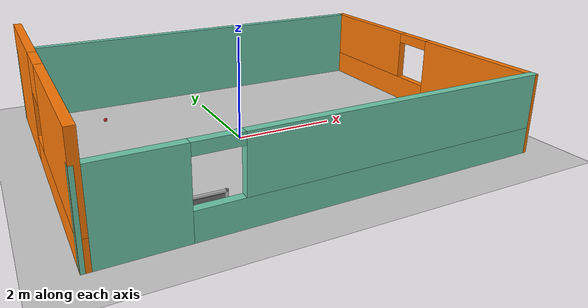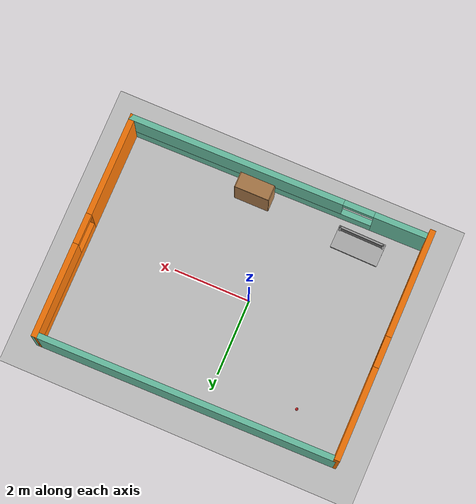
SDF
<sdf version="1.6">
 <world name="default">
  <light name="sun" type="directional">
   <pose>0 0 10 0 -0 0</pose>
   <diffuse>0.8 0.8 0.8 1</diffuse>
   <specular>0.2 0.2 0.2 1</specular>
   <attenuation>
    <range>1000</range>
    <constant>0.9</constant>
    <linear>0.01</linear>
    <quadratic>0.001</quadratic>
   </attenuation>
   <direction>-0.5 0.1 -0.9</direction>
  </light>
  <model name="ground_plane">
   <static>1</static>
   <link name="link">
    <collision name="collision">
     <geometry><plane><normal>0 0 1</normal><size>100 100</size></plane></geometry>
     <surface>
      <contact><collide_bitmask>65535</collide_bitmask></contact>
      <friction><ode><mu>100</mu><mu2>50</mu2></ode></friction>
     </surface>
    </collision>
    <visual name="visual">
     <cast_shadows>0</cast_shadows>
     <geometry><plane><normal>0 0 1</normal><size>100 100</size></plane></geometry>
     <material>
      <script><uri>file://media/materials/scripts/gazebo.material</uri><name>Gazebo/Grey</name></script>
     </material>
    </visual>
   </link>
  </model>
  <gravity>0 0 -9.8</gravity>
  <magnetic_field>6e-06 2.3e-05 -4.2e-05</magnetic_field>
  <atmosphere type="adiabatic"/>
  <physics name="default_physics" default="0" type="ode">
   <max_step_size>0.001</max_step_size>
   <real_time_factor>1</real_time_factor>
   <real_time_update_rate>1000</real_time_update_rate>
  </physics>
  <scene><ambient>0.4 0.4 0.4 1</ambient><background>0.7 0.7 0.7 1</background><shadows>1</shadows></scene>
  <spherical_coordinates>
   <surface_model>EARTH_WGS84</surface_model>
   <latitude_deg>0</latitude_deg>
   <longitude_deg>0</longitude_deg>
   <elevation>0</elevation>
   <heading_deg>0</heading_deg>
  </spherical_coordinates>
  <model name="my_wall">
   <pose>0.408424 0.027831 0 0 -0 0</pose>
   <link name="Wall_0">
    <collision name="Wall_0_Collision">
     <geometry><box><size>8 0.15 1.5</size></box></geometry>
     <pose>0 0 0.75 0 -0 0</pose>
    </collision>
    <visual name="Wall_0_Visual">
     <pose>0 0 0.75 0 -0 0</pose>
     <geometry><box><size>8 0.15 1.5</size></box></geometry>
     <material>
      <script><uri>file://media/materials/scripts/gazebo.material</uri><name>Gazebo/Grey</name></script>
      <ambient>0.435294 0.796078 0.67451 1</ambient>
     </material>
     <meta><layer>0</layer></meta>
    </visual>
    <pose>0 2.93658 0 0 -0 0.008791</pose>
   </link>
   <link name="Wall_2">
    <pose>-3.9245 -0.034424 0 0 0 -1.5708</pose>
    <visual name="Wall_2_Visual_0">
     <pose>-1.80969 0 1 0 -0 0</pose>
     <geometry><box><size>2.40375 0.15 2</size></box></geometry>
     <material>
      <script><uri>file://media/materials/scripts/gazebo.material</uri><name>Gazebo/Grey</name></script>
      <ambient>0.996078 0.47451 0.0196078 1</ambient>
     </material>
     <meta><layer>0</layer></meta>
    </visual>
    <collision name="Wall_2_Collision_0">
     <geometry><box><size>2.40375 0.15 2</size></box></geometry>
     <pose>-1.80969 0 1 0 -0 0</pose>
    </collision>
    <visual name="Wall_2_Visual_1">
     <pose>1.20188 0 0.25 0 -0 0</pose>
     <geometry><box><size>3.61938 0.15 0.5</size></box></geometry>
     <material>
      <script><uri>file://media/materials/scripts/gazebo.material</uri><name>Gazebo/Grey</name></script>
      <ambient>0.996078 0.47451 0.0196078 1</ambient>
     </material>
     <meta><layer>0</layer></meta>
    </visual>
    <collision name="Wall_2_Collision_1">
     <geometry><box><size>3.61938 0.15 0.5</size></box></geometry>
     <pose>1.20188 0 0.25 0 -0 0</pose>
    </collision>
    <visual name="Wall_2_Visual_2">
     <pose>1.60188 0 1.25 0 -0 0</pose>
     <geometry><box><size>2.81938 0.15 1.5</size></box></geometry>
     <material>
      <script><uri>file://media/materials/scripts/gazebo.material</uri><name>Gazebo/Grey</name></script>
      <ambient>0.996078 0.47451 0.0196078 1</ambient>
     </material>
     <meta><layer>0</layer></meta>
    </visual>
    <collision name="Wall_2_Collision_2">
     <geometry><box><size>2.81938 0.15 1.5</size></box></geometry>
     <pose>1.60188 0 1.25 0 -0 0</pose>
    </collision>
    <visual name="Wall_2_Visual_3">
     <pose>-0.207814 0 1.65 0 -0 0</pose>
     <geometry><box><size>0.8 0.15 0.7</size></box></geometry>
     <material>
      <script><uri>file://media/materials/scripts/gazebo.material</uri><name>Gazebo/Grey</name></script>
      <ambient>0.996078 0.47451 0.0196078 1</ambient>
     </material>
     <meta><layer>0</layer></meta>
    </visual>
    <collision name="Wall_2_Collision_3">
     <geometry><box><size>0.8 0.15 0.7</size></box></geometry>
     <pose>-0.207814 0 1.65 0 -0 0</pose>
    </collision>
   </link>
   <link name="Wall_3">
    <pose>0 -2.92842 0 0 -0 0.010829</pose>
    <visual name="Wall_3_Visual_0">
     <pose>-3.23688 0 0.75 0 -0 0</pose>
     <geometry><box><size>1.52625 0.15 1.5</size></box></geometry>
     <material>
      <script><uri>file://media/materials/scripts/gazebo.material</uri><name>Gazebo/Grey</name></script>
      <ambient>0.435294 0.796078 0.67451 1</ambient>
     </material>
     <meta><layer>0</layer></meta>
    </visual>
    <collision name="Wall_3_Collision_0">
     <geometry><box><size>1.52625 0.15 1.5</size></box></geometry>
     <pose>-3.23688 0 0.75 0 -0 0</pose>
    </collision>
    <visual name="Wall_3_Visual_1">
     <pose>0.763124 0 0.25 0 -0 0</pose>
     <geometry><box><size>6.47375 0.15 0.5</size></box></geometry>
     <material>
      <script><uri>file://media/materials/scripts/gazebo.material</uri><name>Gazebo/Grey</name></script>
      <ambient>0.435294 0.796078 0.67451 1</ambient>
     </material>
     <meta><layer>0</layer></meta>
    </visual>
    <collision name="Wall_3_Collision_1">
     <geometry><box><size>6.47375 0.15 0.5</size></box></geometry>
     <pose>0.763124 0 0.25 0 -0 0</pose>
    </collision>
    <visual name="Wall_3_Visual_2">
     <pose>1.16312 0 1 0 -0 0</pose>
     <geometry><box><size>5.67375 0.15 1</size></box></geometry>
     <material>
      <script><uri>file://media/materials/scripts/gazebo.material</uri><name>Gazebo/Grey</name></script>
      <ambient>0.435294 0.796078 0.67451 1</ambient>
     </material>
     <meta><layer>0</layer></meta>
    </visual>
    <collision name="Wall_3_Collision_2">
     <geometry><box><size>5.67375 0.15 1</size></box></geometry>
     <pose>1.16312 0 1 0 -0 0</pose>
    </collision>
    <visual name="Wall_3_Visual_3">
     <pose>-2.07375 0 1.4 0 -0 0</pose>
     <geometry><box><size>0.8 0.15 0.2</size></box></geometry>
     <material>
      <script><uri>file://media/materials/scripts/gazebo.material</uri><name>Gazebo/Grey</name></script>
      <ambient>0.435294 0.796078 0.67451 1</ambient>
     </material>
     <meta><layer>0</layer></meta>
    </visual>
    <collision name="Wall_3_Collision_3">
     <geometry><box><size>0.8 0.15 0.2</size></box></geometry>
     <pose>-2.07375 0 1.4 0 -0 0</pose>
    </collision>
   </link>
   <link name="Wall_4">
    <pose>3.9245 0.042576 0 0 -0 1.5708</pose>
    <visual name="Wall_4_Visual_0">
     <pose>-1.64786 0 0.75 0 -0 0</pose>
     <geometry><box><size>2.71111 0.15 1.5</size></box></geometry>
     <material>
      <script><uri>file://media/materials/scripts/gazebo.material</uri><name>Gazebo/Grey</name></script>
      <ambient>0.996078 0.47451 0.0196078 1</ambient>
     </material>
     <meta><layer>0</layer></meta>
    </visual>
    <collision name="Wall_4_Collision_0">
     <geometry><box><size>2.71111 0.15 1.5</size></box></geometry>
     <pose>-1.64786 0 0.75 0 -0 0</pose>
    </collision>
    <visual name="Wall_4_Visual_1">
     <pose>1.35556 0 0.25 0 -0 0</pose>
     <geometry><box><size>3.29571 0.15 0.5</size></box></geometry>
     <material>
      <script><uri>file://media/materials/scripts/gazebo.material</uri><name>Gazebo/Grey</name></script>
      <ambient>0.996078 0.47451 0.0196078 1</ambient>
     </material>
     <meta><layer>0</layer></meta>
    </visual>
    <collision name="Wall_4_Collision_1">
     <geometry><box><size>3.29571 0.15 0.5</size></box></geometry>
     <pose>1.35556 0 0.25 0 -0 0</pose>
    </collision>
    <visual name="Wall_4_Visual_2">
     <pose>1.75556 0 1 0 -0 0</pose>
     <geometry><box><size>2.49571 0.15 1</size></box></geometry>
     <material>
      <script><uri>file://media/materials/scripts/gazebo.material</uri><name>Gazebo/Grey</name></script>
      <ambient>0.996078 0.47451 0.0196078 1</ambient>
     </material>
     <meta><layer>0</layer></meta>
    </visual>
    <collision name="Wall_4_Collision_2">
     <geometry><box><size>2.49571 0.15 1</size></box></geometry>
     <pose>1.75556 0 1 0 -0 0</pose>
    </collision>
    <visual name="Wall_4_Visual_3">
     <pose>0.1077 0 1.4 0 -0 0</pose>
     <geometry><box><size>0.8 0.15 0.2</size></box></geometry>
     <material>
      <script><uri>file://media/materials/scripts/gazebo.material</uri><name>Gazebo/Grey</name></script>
      <ambient>0.996078 0.47451 0.0196078 1</ambient>
     </material>
     <meta><layer>0</layer></meta>
    </visual>
    <collision name="Wall_4_Collision_3">
     <geometry><box><size>0.8 0.15 0.2</size></box></geometry>
     <pose>0.1077 0 1.4 0 -0 0</pose>
    </collision>
   </link>
   <static>1</static>
  </model>
  <model name="frc2016_lowbar">
   <link name="base">
    <inertial>
     <mass>50</mass>
     <inertia>
      <ixx>0.035543</ixx>
      <ixy>0</ixy>
      <ixz>0</ixz>
      <iyy>0.134412</iyy>
      <iyz>0</iyz>
      <izz>0.165376</izz>
     </inertia>
    </inertial>
    <visual name="platform">
     <pose>0 0 0.039065 0 -0 0</pose>
     <geometry><box><size>1.26 0.5996 0.07813</size></box></geometry>
    </visual>
    <collision name="platform">
     <pose>0 0 0.039065 0 -0 0</pose>
     <geometry><box><size>1.27 0.6096 0.07813</size></box></geometry>
    </collision>
    <visual name="right_column">
     <pose>-0.57845 -0.18464 0.26863 0 -0 0</pose>
     <geometry><cylinder><radius>0.0254</radius><length>0.381</length></cylinder></geometry>
    </visual>
    <collision name="right_column">
     <pose>-0.57845 -0.18464 0.26863 0 -0 0</pose>
     <geometry><cylinder><radius>0.0254</radius><length>0.381</length></cylinder></geometry>
    </collision>
    <visual name="left_column">
     <pose>0.57845 -0.18464 0.26863 0 -0 0</pose>
     <geometry><cylinder><radius>0.0254</radius><length>0.381</length></cylinder></geometry>
    </visual>
    <collision name="left_column">
     <pose>0.57845 -0.18464 0.26863 0 -0 0</pose>
     <geometry><cylinder><radius>0.0254</radius><length>0.381</length></cylinder></geometry>
    </collision>
    <visual name="horizontal">
     <pose>0 -0.18464 0.43556 0 1.5707 0</pose>
     <geometry><cylinder><radius>0.0254</radius><length>1.2018</length></cylinder></geometry>
    </visual>
    <collision name="horizontal">
     <pose>0 -0.18464 0.43556 0 1.5707 0</pose>
     <geometry><cylinder><radius>0.0254</radius><length>1.2018</length></cylinder></geometry>
    </collision>
   </link>
   <link name="wall">
    <pose>0 -0.1778 0.24323 0 -0 0</pose>
    <inertial>
     <mass>1</mass>
     <inertia>
      <ixx>0.00774528</ixx>
      <ixy>0</ixy>
      <ixz>0</ixz>
      <iyy>0.116613</iyy>
      <iyz>0</iyz>
      <izz>0.108874</izz>
     </inertia>
    </inertial>
    <visual name="visual">
     <geometry><box><size>1.1176 0.00635 0.3</size></box></geometry>
     <material><ambient>0.46 0.46 0.46 1</ambient><diffuse>0.46 0.46 0.46 1</diffuse></material>
    </visual>
    <collision name="collision"><geometry><box><size>1.143 0.00635 0.3</size></box></geometry></collision>
   </link>
   <joint name="bar_joint" type="revolute">
    <pose>0 0 0.36378 0 -0 0</pose>
    <parent>base</parent>
    <child>wall</child>
    <axis>
     <xyz>1 0 0</xyz>
     <limit><lower>-1.5707</lower><upper>1.5707</upper></limit>
     <use_parent_model_frame>0</use_parent_model_frame>
     <dynamics><spring_reference>0</spring_reference><spring_stiffness>0</spring_stiffness></dynamics>
    </axis>
   </joint>
   <pose>-1.96196 -2.36052 -0.000186 0 0.000294 -0.016493</pose>
  </model>
  <model name="cricket_ball">
   <link name="link">
    <pose>0 0 0.0375 0 -0 0</pose>
    <inertial>
     <mass>0.1467</mass>
     <inertia>
      <ixx>8.25187e-05</ixx>
      <ixy>0</ixy>
      <ixz>0</ixz>
      <iyy>8.25187e-05</iyy>
      <iyz>0</iyz>
      <izz>8.25187e-05</izz>
     </inertia>
    </inertial>
    <collision name="collision">
     <geometry><sphere><radius>0.0375</radius></sphere></geometry>
     <surface>
      <contact>
       <poissons_ratio>0.347</poissons_ratio>
       <elastic_modulus>8.8e+09</elastic_modulus>
       <ode><kp>100000</kp><kd>100</kd><max_vel>100</max_vel><min_depth>0.001</min_depth></ode>
      </contact>
      <friction>
       <torsional>
        <coefficient>1</coefficient>
        <use_patch_radius>0</use_patch_radius>
        <surface_radius>0.01</surface_radius>
       </torsional>
      </friction>
     </surface>
    </collision>
    <visual name="visual">
     <geometry><sphere><radius>0.0375</radius></sphere></geometry>
     <material>
      <script><uri>file://media/materials/scripts/gazebo.material</uri><name>Gazebo/Red</name></script>
     </material>
    </visual>
    <velocity_decay><linear>0</linear><angular>0.005</angular></velocity_decay>
   </link>
   <pose>-2.14362 2.02114 -0.001014 0 -0 0</pose>
  </model>
  <model name="bookshelf">
   <static>1</static>
   <link name="link">
    <inertial><mass>1</mass></inertial>
    <collision name="back">
     <pose>0 0.005 0.6 0 -0 0</pose>
     <geometry><box><size>0.9 0.01 1.2</size></box></geometry>
    </collision>
    <visual name="visual1">
     <pose>0 0.005 0.6 0 -0 0</pose>
     <geometry><box><size>0.9 0.01 1.2</size></box></geometry>
     <material>
      <script><uri>file://media/materials/scripts/gazebo.material</uri><name>Gazebo/Wood</name></script>
     </material>
    </visual>
    <collision name="left_side">
     <pose>0.45 -0.195 0.6 0 -0 0</pose>
     <geometry><box><size>0.02 0.4 1.2</size></box></geometry>
    </collision>
    <visual name="visual2">
     <pose>0.45 -0.195 0.6 0 -0 0</pose>
     <geometry><box><size>0.02 0.4 1.2</size></box></geometry>
     <material>
      <script><uri>file://media/materials/scripts/gazebo.material</uri><name>Gazebo/Wood</name></script>
     </material>
    </visual>
    <collision name="right_side">
     <pose>-0.45 -0.195 0.6 0 -0 0</pose>
     <geometry><box><size>0.02 0.4 1.2</size></box></geometry>
    </collision>
    <visual name="visual3">
     <pose>-0.45 -0.195 0.6 0 -0 0</pose>
     <geometry><box><size>0.02 0.4 1.2</size></box></geometry>
     <material>
      <script><uri>file://media/materials/scripts/gazebo.material</uri><name>Gazebo/Wood</name></script>
     </material>
    </visual>
    <collision name="bottom">
     <pose>0 -0.195 0.03 0 -0 0</pose>
     <geometry><box><size>0.88 0.4 0.06</size></box></geometry>
    </collision>
    <visual name="visual4">
     <pose>0 -0.195 0.03 0 -0 0</pose>
     <geometry><box><size>0.88 0.4 0.06</size></box></geometry>
     <material>
      <script><uri>file://media/materials/scripts/gazebo.material</uri><name>Gazebo/Wood</name></script>
     </material>
    </visual>
    <collision name="top">
     <pose>0 -0.195 1.19 0 -0 0</pose>
     <geometry><box><size>0.88 0.4 0.02</size></box></geometry>
    </collision>
    <visual name="visual5">
     <pose>0 -0.195 1.19 0 -0 0</pose>
     <geometry><box><size>0.88 0.4 0.02</size></box></geometry>
     <material>
      <script><uri>file://media/materials/scripts/gazebo.material</uri><name>Gazebo/Wood</name></script>
     </material>
    </visual>
    <collision name="low_shelf">
     <pose>0 -0.195 0.43 0 -0 0</pose>
     <geometry><box><size>0.88 0.4 0.02</size></box></geometry>
    </collision>
    <visual name="visual6">
     <pose>0 -0.195 0.43 0 -0 0</pose>
     <geometry><box><size>0.88 0.4 0.02</size></box></geometry>
     <material>
      <script><uri>file://media/materials/scripts/gazebo.material</uri><name>Gazebo/Wood</name></script>
     </material>
    </visual>
    <collision name="high_shelf">
     <pose>0 -0.195 0.8 0 -0 0</pose>
     <geometry><box><size>0.88 0.4 0.02</size></box></geometry>
    </collision>
    <visual name="visual7">
     <pose>0 -0.195 0.8 0 -0 0</pose>
     <geometry><box><size>0.88 0.4 0.02</size></box></geometry>
     <material>
      <script><uri>file://media/materials/scripts/gazebo.material</uri><name>Gazebo/Wood</name></script>
     </material>
    </visual>
   </link>
   <pose>0.916543 -2.31108 0 0 -0 0</pose>
  </model>
 </world>
</sdf>
